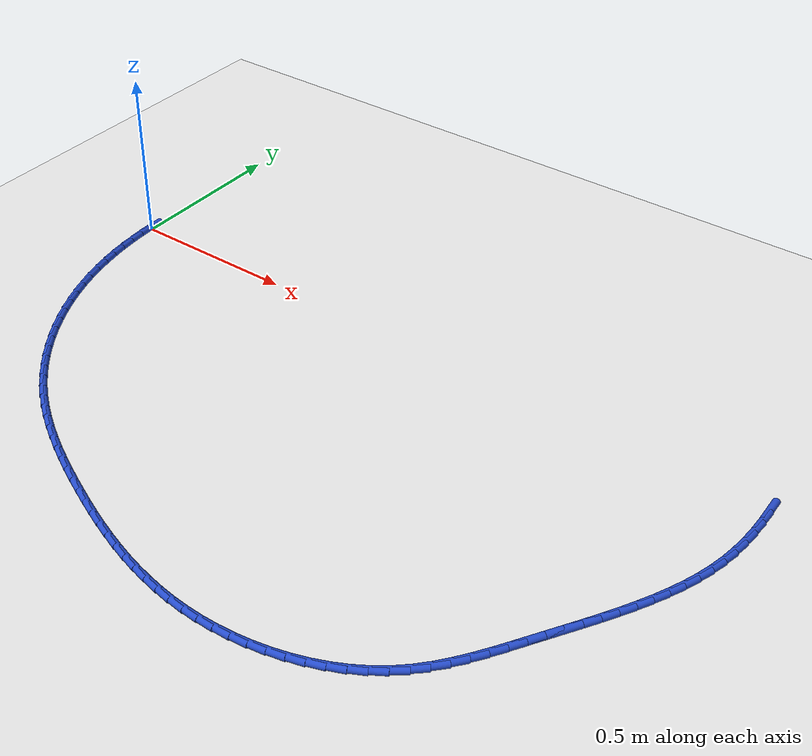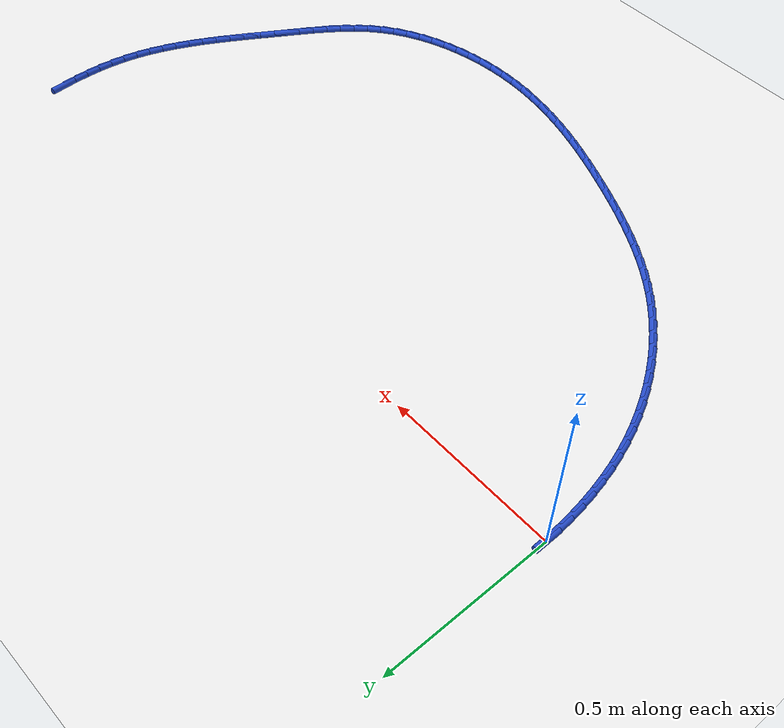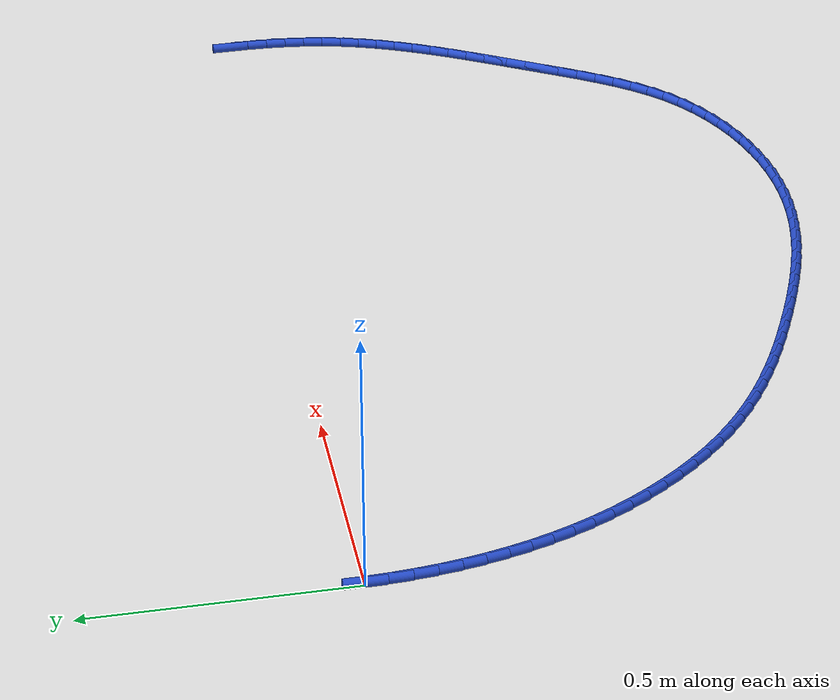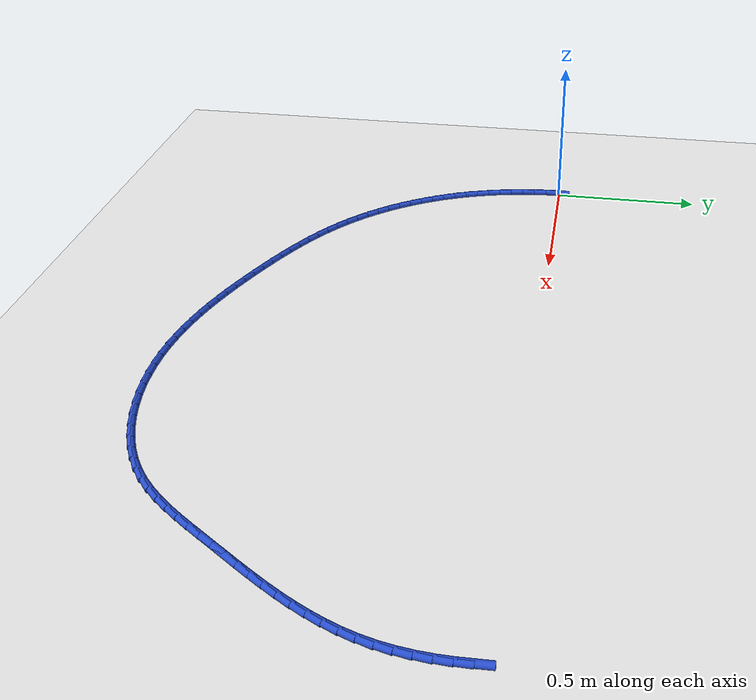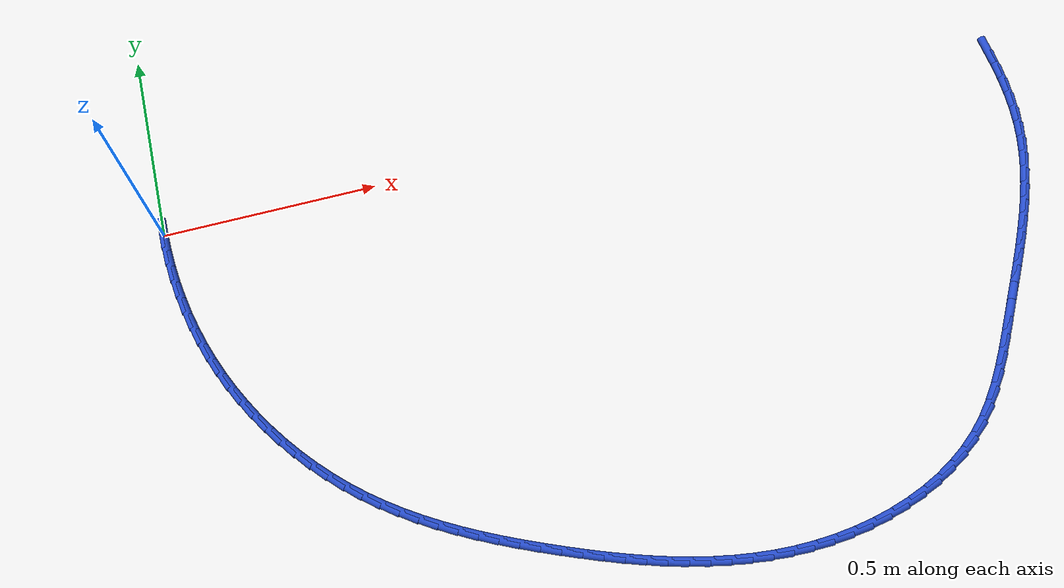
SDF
<sdf version="1.6">
 <world name="default">
  <model name="ground_plane">
   <static>1</static>
   <link name="link">
    <collision name="collision">
     <geometry><plane><normal>0 0 1</normal><size>100 100</size></plane></geometry>
     <surface><friction><ode><mu>100</mu><mu2>50</mu2></ode></friction></surface>
    </collision>
    <visual name="visual">
     <cast_shadows>0</cast_shadows>
     <geometry><plane><normal>0 0 1</normal><size>100 100</size></plane></geometry>
     <material>
      <script><uri>file://media/materials/scripts/gazebo.material</uri><name>Gazebo/WhiteGlow</name></script>
     </material>
    </visual>
   </link>
  </model>
  <model name="line">
   <link name="link_75">
    <pose>2.0578190626390716 -0.03148024494922658 0.01 0 1.57 -1.54157945097995</pose>
    <collision name="collision">
     <geometry><cylinder><radius>0.01</radius><length>0.08</length></cylinder></geometry>
    </collision>
    <visual name="visual">
     <material>
      <script><name>Gazebo/Blue</name><uri>file://media/materials/scripts/gazebo.material</uri></script>
     </material>
     <geometry><cylinder><radius>0.01</radius><length>0.08</length></cylinder></geometry>
    </visual>
   </link>
   <link name="link_76">
    <pose>2.059097541503903 -0.07522602637230458 0.01 0 1.57 1.5566669034358185</pose>
    <collision name="collision">
     <geometry><cylinder><radius>0.01</radius><length>0.08</length></cylinder></geometry>
    </collision>
    <visual name="visual">
     <material>
      <script><name>Gazebo/Blue</name><uri>file://media/materials/scripts/gazebo.material</uri></script>
     </material>
     <geometry><cylinder><radius>0.01</radius><length>0.08</length></cylinder></geometry>
    </visual>
   </link>
   <link name="link_77">
    <pose>2.0584839252457896 -0.11865139538677807 0.01 0 1.57 1.5088403497087017</pose>
    <collision name="collision">
     <geometry><cylinder><radius>0.01</radius><length>0.08</length></cylinder></geometry>
    </collision>
    <visual name="visual">
     <material>
      <script><name>Gazebo/Blue</name><uri>file://media/materials/scripts/gazebo.material</uri></script>
     </material>
     <geometry><cylinder><radius>0.01</radius><length>0.08</length></cylinder></geometry>
    </visual>
   </link>
   <link name="link_78">
    <pose>2.0558144088021697 -0.1616835612885254 0.01 0 1.57 1.456435824767279</pose>
    <collision name="collision">
     <geometry><cylinder><radius>0.01</radius><length>0.08</length></cylinder></geometry>
    </collision>
    <visual name="visual">
     <material>
      <script><name>Gazebo/Blue</name><uri>file://media/materials/scripts/gazebo.material</uri></script>
     </material>
     <geometry><cylinder><radius>0.01</radius><length>0.08</length></cylinder></geometry>
    </visual>
   </link>
   <link name="link_79">
    <pose>2.05092518711048 -0.2042497333734271 0.01 0 1.57 1.399445822095924</pose>
    <collision name="collision">
     <geometry><cylinder><radius>0.01</radius><length>0.08</length></cylinder></geometry>
    </collision>
    <visual name="visual">
     <material>
      <script><name>Gazebo/Blue</name><uri>file://media/materials/scripts/gazebo.material</uri></script>
     </material>
     <geometry><cylinder><radius>0.01</radius><length>0.08</length></cylinder></geometry>
    </visual>
   </link>
   <link name="link_80">
    <pose>2.0436524551081603 -0.2462771209373608 0.01 0 1.57 1.338064077118481</pose>
    <collision name="collision">
     <geometry><cylinder><radius>0.01</radius><length>0.08</length></cylinder></geometry>
    </collision>
    <visual name="visual">
     <material>
      <script><name>Gazebo/Blue</name><uri>file://media/materials/scripts/gazebo.material</uri></script>
     </material>
     <geometry><cylinder><radius>0.01</radius><length>0.08</length></cylinder></geometry>
    </visual>
   </link>
   <link name="link_81">
    <pose>2.033835535792248 -0.28769395856424373 0.01 0 1.57 1.2765928549116508</pose>
    <collision name="collision">
     <geometry><cylinder><radius>0.01</radius><length>0.08</length></cylinder></geometry>
    </collision>
    <visual name="visual">
     <material>
      <script><name>Gazebo/Blue</name><uri>file://media/materials/scripts/gazebo.material</uri></script>
     </material>
     <geometry><cylinder><radius>0.01</radius><length>0.08</length></cylinder></geometry>
    </visual>
   </link>
   <link name="link_82">
    <pose>2.021476919322631 -0.3284819623445664 0.01 0 1.57 1.2213046557243608</pose>
    <collision name="collision">
     <geometry><cylinder><radius>0.01</radius><length>0.08</length></cylinder></geometry>
    </collision>
    <visual name="visual">
     <material>
      <script><name>Gazebo/Blue</name><uri>file://media/materials/scripts/gazebo.material</uri></script>
     </material>
     <geometry><cylinder><radius>0.01</radius><length>0.08</length></cylinder></geometry>
    </visual>
   </link>
   <link name="link_83">
    <pose>2.0068188331395116 -0.36870142735928324 0.01 0 1.57 1.1728511510974842</pose>
    <collision name="collision">
     <geometry><cylinder><radius>0.01</radius><length>0.08</length></cylinder></geometry>
    </collision>
    <visual name="visual">
     <material>
      <script><name>Gazebo/Blue</name><uri>file://media/materials/scripts/gazebo.material</uri></script>
     </material>
     <geometry><cylinder><radius>0.01</radius><length>0.08</length></cylinder></geometry>
    </visual>
   </link>
   <link name="link_84">
    <pose>1.9901226610563545 -0.4084189275979548 0.01 0 1.57 1.1312210568525272</pose>
    <collision name="collision">
     <geometry><cylinder><radius>0.01</radius><length>0.08</length></cylinder></geometry>
    </collision>
    <visual name="visual">
     <material>
      <script><name>Gazebo/Blue</name><uri>file://media/materials/scripts/gazebo.material</uri></script>
     </material>
     <geometry><cylinder><radius>0.01</radius><length>0.08</length></cylinder></geometry>
    </visual>
   </link>
   <link name="link_85">
    <pose>1.971649786886628 -0.44770103705013903 0.01 0 1.57 1.0962807242312929</pose>
    <collision name="collision">
     <geometry><cylinder><radius>0.01</radius><length>0.08</length></cylinder></geometry>
    </collision>
    <visual name="visual">
     <material>
      <script><name>Gazebo/Blue</name><uri>file://media/materials/scripts/gazebo.material</uri></script>
     </material>
     <geometry><cylinder><radius>0.01</radius><length>0.08</length></cylinder></geometry>
    </visual>
   </link>
   <link name="link_86">
    <pose>1.9516615944437974 -0.4866143297053961 0.01 0 1.57 1.0678328339312293</pose>
    <collision name="collision">
     <geometry><cylinder><radius>0.01</radius><length>0.08</length></cylinder></geometry>
    </collision>
    <visual name="visual">
     <material>
      <script><name>Gazebo/Blue</name><uri>file://media/materials/scripts/gazebo.material</uri></script>
     </material>
     <geometry><cylinder><radius>0.01</radius><length>0.08</length></cylinder></geometry>
    </visual>
   </link>
   <link name="link_87">
    <pose>1.9304194675413306 -0.525225379553285 0.01 0 1.57 1.045661972989527</pose>
    <collision name="collision">
     <geometry><cylinder><radius>0.01</radius><length>0.08</length></cylinder></geometry>
    </collision>
    <visual name="visual">
     <material>
      <script><name>Gazebo/Blue</name><uri>file://media/materials/scripts/gazebo.material</uri></script>
     </material>
     <geometry><cylinder><radius>0.01</radius><length>0.08</length></cylinder></geometry>
    </visual>
   </link>
   <link name="link_88">
    <pose>1.908184789992693 -0.5636007605833638 0.01 0 1.57 1.0295675159652453</pose>
    <collision name="collision">
     <geometry><cylinder><radius>0.01</radius><length>0.08</length></cylinder></geometry>
    </collision>
    <visual name="visual">
     <material>
      <script><name>Gazebo/Blue</name><uri>file://media/materials/scripts/gazebo.material</uri></script>
     </material>
     <geometry><cylinder><radius>0.01</radius><length>0.08</length></cylinder></geometry>
    </visual>
   </link>
   <link name="link_89">
    <pose>1.8852189456113504 -0.6018070467851931 0.01 0 1.57 1.0193858644598957</pose>
    <collision name="collision">
     <geometry><cylinder><radius>0.01</radius><length>0.08</length></cylinder></geometry>
    </collision>
    <visual name="visual">
     <material>
      <script><name>Gazebo/Blue</name><uri>file://media/materials/scripts/gazebo.material</uri></script>
     </material>
     <geometry><cylinder><radius>0.01</radius><length>0.08</length></cylinder></geometry>
    </visual>
   </link>
   <link name="link_90">
    <pose>1.8617833182107706 -0.6399108121483315 0.01 0 1.57 1.0150044413735155</pose>
    <collision name="collision">
     <geometry><cylinder><radius>0.01</radius><length>0.08</length></cylinder></geometry>
    </collision>
    <visual name="visual">
     <material>
      <script><name>Gazebo/Blue</name><uri>file://media/materials/scripts/gazebo.material</uri></script>
     </material>
     <geometry><cylinder><radius>0.01</radius><length>0.08</length></cylinder></geometry>
    </visual>
   </link>
   <link name="link_91">
    <pose>1.8381392916044197 -0.6779786306623372 0.01 0 1.57 1.0162468766296546</pose>
    <collision name="collision">
     <geometry><cylinder><radius>0.01</radius><length>0.08</length></cylinder></geometry>
    </collision>
    <visual name="visual">
     <material>
      <script><name>Gazebo/Blue</name><uri>file://media/materials/scripts/gazebo.material</uri></script>
     </material>
     <geometry><cylinder><radius>0.01</radius><length>0.08</length></cylinder></geometry>
    </visual>
   </link>
   <link name="link_92">
    <pose>1.8145437634291357 -0.7160738853554199 0.01 0 1.57 1.0161159859363358</pose>
    <collision name="collision">
     <geometry><cylinder><radius>0.01</radius><length>0.08</length></cylinder></geometry>
    </collision>
    <visual name="visual">
     <material>
      <script><name>Gazebo/Blue</name><uri>file://media/materials/scripts/gazebo.material</uri></script>
     </material>
     <geometry><cylinder><radius>0.01</radius><length>0.08</length></cylinder></geometry>
    </visual>
   </link>
   <link name="link_93">
    <pose>1.7909978061942704 -0.7540779940408301 0.01 0 1.57 1.0038873113246498</pose>
    <collision name="collision">
     <geometry><cylinder><radius>0.01</radius><length>0.08</length></cylinder></geometry>
    </collision>
    <visual name="visual">
     <material>
      <script><name>Gazebo/Blue</name><uri>file://media/materials/scripts/gazebo.material</uri></script>
     </material>
     <geometry><cylinder><radius>0.01</radius><length>0.08</length></cylinder></geometry>
    </visual>
   </link>
   <link name="link_94">
    <pose>1.767113452479846 -0.7915956552937141 0.01 0 1.57 0.9783662302962106</pose>
    <collision name="collision">
     <geometry><cylinder><radius>0.01</radius><length>0.08</length></cylinder></geometry>
    </collision>
    <visual name="visual">
     <material>
      <script><name>Gazebo/Blue</name><uri>file://media/materials/scripts/gazebo.material</uri></script>
     </material>
     <geometry><cylinder><radius>0.01</radius><length>0.08</length></cylinder></geometry>
    </visual>
   </link>
   <link name="link_95">
    <pose>1.7424701293097415 -0.8282083757647535 0.01 0 1.57 0.9390791796296835</pose>
    <collision name="collision">
     <geometry><cylinder><radius>0.01</radius><length>0.08</length></cylinder></geometry>
    </collision>
    <visual name="visual">
     <material>
      <script><name>Gazebo/Blue</name><uri>file://media/materials/scripts/gazebo.material</uri></script>
     </material>
     <geometry><cylinder><radius>0.01</radius><length>0.08</length></cylinder></geometry>
    </visual>
   </link>
   <link name="link_96">
    <pose>1.7166472637078356 -0.8634976621046291 0.01 0 1.57 0.8855108338736527</pose>
    <collision name="collision">
     <geometry><cylinder><radius>0.01</radius><length>0.08</length></cylinder></geometry>
    </collision>
    <visual name="visual">
     <material>
      <script><name>Gazebo/Blue</name><uri>file://media/materials/scripts/gazebo.material</uri></script>
     </material>
     <geometry><cylinder><radius>0.01</radius><length>0.08</length></cylinder></geometry>
    </visual>
   </link>
   <link name="link_97">
    <pose>1.6892242826980066 -0.8970450209640248 0.01 0 1.57 0.817332876439566</pose>
    <collision name="collision">
     <geometry><cylinder><radius>0.01</radius><length>0.08</length></cylinder></geometry>
    </collision>
    <visual name="visual">
     <material>
      <script><name>Gazebo/Blue</name><uri>file://media/materials/scripts/gazebo.material</uri></script>
     </material>
     <geometry><cylinder><radius>0.01</radius><length>0.08</length></cylinder></geometry>
    </visual>
   </link>
   <link name="link_98">
    <pose>1.6597806133041342 -0.9284319589936207 0.01 0 1.57 0.7347650932911559</pose>
    <collision name="collision">
     <geometry><cylinder><radius>0.01</radius><length>0.08</length></cylinder></geometry>
    </collision>
    <visual name="visual">
     <material>
      <script><name>Gazebo/Blue</name><uri>file://media/materials/scripts/gazebo.material</uri></script>
     </material>
     <geometry><cylinder><radius>0.01</radius><length>0.08</length></cylinder></geometry>
    </visual>
   </link>
   <link name="link_99">
    <pose>1.627896434653056 -0.9572404524857953 0.01 0 1.57 0.644051072908042</pose>
    <collision name="collision">
     <geometry><cylinder><radius>0.01</radius><length>0.08</length></cylinder></geometry>
    </collision>
    <visual name="visual">
     <material>
      <script><name>Gazebo/Blue</name><uri>file://media/materials/scripts/gazebo.material</uri></script>
     </material>
     <geometry><cylinder><radius>0.01</radius><length>0.08</length></cylinder></geometry>
    </visual>
   </link>
   <link name="link_100">
    <pose>1.5933527734948845 -0.9831778946282524 0.01 0 1.57 0.5580675763667018</pose>
    <collision name="collision">
     <geometry><cylinder><radius>0.01</radius><length>0.08</length></cylinder></geometry>
    </collision>
    <visual name="visual">
     <material>
      <script><name>Gazebo/Blue</name><uri>file://media/materials/scripts/gazebo.material</uri></script>
     </material>
     <geometry><cylinder><radius>0.01</radius><length>0.08</length></cylinder></geometry>
    </visual>
   </link>
   <link name="link_101">
    <pose>1.5564010474386987 -1.0062454085526298 0.01 0 1.57 0.47829500113681067</pose>
    <collision name="collision">
     <geometry><cylinder><radius>0.01</radius><length>0.08</length></cylinder></geometry>
    </collision>
    <visual name="visual">
     <material>
      <script><name>Gazebo/Blue</name><uri>file://media/materials/scripts/gazebo.material</uri></script>
     </material>
     <geometry><cylinder><radius>0.01</radius><length>0.08</length></cylinder></geometry>
    </visual>
   </link>
   <link name="link_102">
    <pose>1.5173599225716472 -1.0264861098981055 0.01 0 1.57 0.40419207002087715</pose>
    <collision name="collision">
     <geometry><cylinder><radius>0.01</radius><length>0.08</length></cylinder></geometry>
    </collision>
    <visual name="visual">
     <material>
      <script><name>Gazebo/Blue</name><uri>file://media/materials/scripts/gazebo.material</uri></script>
     </material>
     <geometry><cylinder><radius>0.01</radius><length>0.08</length></cylinder></geometry>
    </visual>
   </link>
   <link name="link_103">
    <pose>1.4765480649808806 -1.0439431143038589 0.01 0 1.57 0.33507298801911856</pose>
    <collision name="collision">
     <geometry><cylinder><radius>0.01</radius><length>0.08</length></cylinder></geometry>
    </collision>
    <visual name="visual">
     <material>
      <script><name>Gazebo/Blue</name><uri>file://media/materials/scripts/gazebo.material</uri></script>
     </material>
     <geometry><cylinder><radius>0.01</radius><length>0.08</length></cylinder></geometry>
    </visual>
   </link>
   <link name="link_104">
    <pose>1.434284140753548 -1.0586595374090682 0.01 0 1.57 0.27017966775192875</pose>
    <collision name="collision">
     <geometry><cylinder><radius>0.01</radius><length>0.08</length></cylinder></geometry>
    </collision>
    <visual name="visual">
     <material>
      <script><name>Gazebo/Blue</name><uri>file://media/materials/scripts/gazebo.material</uri></script>
     </material>
     <geometry><cylinder><radius>0.01</radius><length>0.08</length></cylinder></geometry>
    </visual>
   </link>
   <link name="link_105">
    <pose>1.3908868159767975 -1.0706784948529124 0.01 0 1.57 0.20872621939032338</pose>
    <collision name="collision">
     <geometry><cylinder><radius>0.01</radius><length>0.08</length></cylinder></geometry>
    </collision>
    <visual name="visual">
     <material>
      <script><name>Gazebo/Blue</name><uri>file://media/materials/scripts/gazebo.material</uri></script>
     </material>
     <geometry><cylinder><radius>0.01</radius><length>0.08</length></cylinder></geometry>
    </visual>
   </link>
   <link name="link_106">
    <pose>1.34667475673778 -1.08004310227457 0.01 0 1.57 0.1499212842393804</pose>
    <collision name="collision">
     <geometry><cylinder><radius>0.01</radius><length>0.08</length></cylinder></geometry>
    </collision>
    <visual name="visual">
     <material>
      <script><name>Gazebo/Blue</name><uri>file://media/materials/scripts/gazebo.material</uri></script>
     </material>
     <geometry><cylinder><radius>0.01</radius><length>0.08</length></cylinder></geometry>
    </visual>
   </link>
   <link name="link_107">
    <pose>1.3019666291236427 -1.0867964753132195 0.01 0 1.57 0.09297401639156383</pose>
    <collision name="collision">
     <geometry><cylinder><radius>0.01</radius><length>0.08</length></cylinder></geometry>
    </collision>
    <visual name="visual">
     <material>
      <script><name>Gazebo/Blue</name><uri>file://media/materials/scripts/gazebo.material</uri></script>
     </material>
     <geometry><cylinder><radius>0.01</radius><length>0.08</length></cylinder></geometry>
    </visual>
   </link>
   <link name="link_108">
    <pose>1.2570810992215353 -1.09098172960804 0.01 0 1.57 0.037088906096398915</pose>
    <collision name="collision">
     <geometry><cylinder><radius>0.01</radius><length>0.08</length></cylinder></geometry>
    </collision>
    <visual name="visual">
     <material>
      <script><name>Gazebo/Blue</name><uri>file://media/materials/scripts/gazebo.material</uri></script>
     </material>
     <geometry><cylinder><radius>0.01</radius><length>0.08</length></cylinder></geometry>
    </visual>
   </link>
   <link name="link_109">
    <pose>1.2123367487182106 -1.092642009978699 0.01 0 1.57 -0.017922923494440655</pose>
    <collision name="collision">
     <geometry><cylinder><radius>0.01</radius><length>0.08</length></cylinder></geometry>
    </collision>
    <visual name="visual">
     <material>
      <script><name>Gazebo/Blue</name><uri>file://media/materials/scripts/gazebo.material</uri></script>
     </material>
     <geometry><cylinder><radius>0.01</radius><length>0.08</length></cylinder></geometry>
    </visual>
   </link>
   <link name="link_110">
    <pose>1.1679758403445553 -1.0918468476663064 0.01 0 1.57 -0.070551808343066</pose>
    <collision name="collision">
     <geometry><cylinder><radius>0.01</radius><length>0.08</length></cylinder></geometry>
    </collision>
    <visual name="visual">
     <material>
      <script><name>Gazebo/Blue</name><uri>file://media/materials/scripts/gazebo.material</uri></script>
     </material>
     <geometry><cylinder><radius>0.01</radius><length>0.08</length></cylinder></geometry>
    </visual>
   </link>
   <link name="link_111">
    <pose>1.124023671033984 -1.0887407873985406 0.01 0 1.57 -0.1201621959966673</pose>
    <collision name="collision">
     <geometry><cylinder><radius>0.01</radius><length>0.08</length></cylinder></geometry>
    </collision>
    <visual name="visual">
     <material>
      <script><name>Gazebo/Blue</name><uri>file://media/materials/scripts/gazebo.material</uri></script>
     </material>
     <geometry><cylinder><radius>0.01</radius><length>0.08</length></cylinder></geometry>
    </visual>
   </link>
   <link name="link_112">
    <pose>1.0804672413532097 -1.0834816144415556 0.01 0 1.57 -0.16647544065254963</pose>
    <collision name="collision">
     <geometry><cylinder><radius>0.01</radius><length>0.08</length></cylinder></geometry>
    </collision>
    <visual name="visual">
     <material>
      <script><name>Gazebo/Blue</name><uri>file://media/materials/scripts/gazebo.material</uri></script>
     </material>
     <geometry><cylinder><radius>0.01</radius><length>0.08</length></cylinder></geometry>
    </visual>
   </link>
   <link name="link_113">
    <pose>1.0372935518689435 -1.0762271140615036 0.01 0 1.57 -0.20930052694870505</pose>
    <collision name="collision">
     <geometry><cylinder><radius>0.01</radius><length>0.08</length></cylinder></geometry>
    </collision>
    <visual name="visual">
     <material>
      <script><name>Gazebo/Blue</name><uri>file://media/materials/scripts/gazebo.material</uri></script>
     </material>
     <geometry><cylinder><radius>0.01</radius><length>0.08</length></cylinder></geometry>
    </visual>
   </link>
   <link name="link_114">
    <pose>0.9944896031478996 -1.0671350715245398 0.01 0 1.57 -0.24852311045884432</pose>
    <collision name="collision">
     <geometry><cylinder><radius>0.01</radius><length>0.08</length></cylinder></geometry>
    </collision>
    <visual name="visual">
     <material>
      <script><name>Gazebo/Blue</name><uri>file://media/materials/scripts/gazebo.material</uri></script>
     </material>
     <geometry><cylinder><radius>0.01</radius><length>0.08</length></cylinder></geometry>
    </visual>
   </link>
   <link name="link_115">
    <pose>0.952042395756789 -1.0563632720968164 0.01 0 1.57 -0.28409163315928887</pose>
    <collision name="collision">
     <geometry><cylinder><radius>0.01</radius><length>0.08</length></cylinder></geometry>
    </collision>
    <visual name="visual">
     <material>
      <script><name>Gazebo/Blue</name><uri>file://media/materials/scripts/gazebo.material</uri></script>
     </material>
     <geometry><cylinder><radius>0.01</radius><length>0.08</length></cylinder></geometry>
    </visual>
   </link>
   <link name="link_116">
    <pose>0.9099389302623245 -1.0440695010444871 0.01 0 1.57 -0.3160025024052733</pose>
    <collision name="collision">
     <geometry><cylinder><radius>0.01</radius><length>0.08</length></cylinder></geometry>
    </collision>
    <visual name="visual">
     <material>
      <script><name>Gazebo/Blue</name><uri>file://media/materials/scripts/gazebo.material</uri></script>
     </material>
     <geometry><cylinder><radius>0.01</radius><length>0.08</length></cylinder></geometry>
    </visual>
   </link>
   <link name="link_117">
    <pose>0.86816620723122 -1.030411543633706 0.01 0 1.57 -0.34428578448570774</pose>
    <collision name="collision">
     <geometry><cylinder><radius>0.01</radius><length>0.08</length></cylinder></geometry>
    </collision>
    <visual name="visual">
     <material>
      <script><name>Gazebo/Blue</name><uri>file://media/materials/scripts/gazebo.material</uri></script>
     </material>
     <geometry><cylinder><radius>0.01</radius><length>0.08</length></cylinder></geometry>
    </visual>
   </link>
   <link name="link_118">
    <pose>0.8267112272301865 -1.0155471851306257 0.01 0 1.57 -0.3689923047614611</pose>
    <collision name="collision">
     <geometry><cylinder><radius>0.01</radius><length>0.08</length></cylinder></geometry>
    </collision>
    <visual name="visual">
     <material>
      <script><name>Gazebo/Blue</name><uri>file://media/materials/scripts/gazebo.material</uri></script>
     </material>
     <geometry><cylinder><radius>0.01</radius><length>0.08</length></cylinder></geometry>
    </visual>
   </link>
   <link name="link_119">
    <pose>0.7855609908259373 -0.9996342108014004 0.01 0 1.57 -0.3901825748069695</pose>
    <collision name="collision">
     <geometry><cylinder><radius>0.01</radius><length>0.08</length></cylinder></geometry>
    </collision>
    <visual name="visual">
     <material>
      <script><name>Gazebo/Blue</name><uri>file://media/materials/scripts/gazebo.material</uri></script>
     </material>
     <geometry><cylinder><radius>0.01</radius><length>0.08</length></cylinder></geometry>
    </visual>
   </link>
   <link name="link_120">
    <pose>0.7447024985851847 -0.9828304059121832 0.01 0 1.57 -0.4079176256020231</pose>
    <collision name="collision">
     <geometry><cylinder><radius>0.01</radius><length>0.08</length></cylinder></geometry>
    </collision>
    <visual name="visual">
     <material>
      <script><name>Gazebo/Blue</name><uri>file://media/materials/scripts/gazebo.material</uri></script>
     </material>
     <geometry><cylinder><radius>0.01</radius><length>0.08</length></cylinder></geometry>
    </visual>
   </link>
   <link name="link_121">
    <pose>0.7041227510746411 -0.9652935557291273 0.01 0 1.57 -0.4226165662932703</pose>
    <collision name="collision">
     <geometry><cylinder><radius>0.01</radius><length>0.08</length></cylinder></geometry>
    </collision>
    <visual name="visual">
     <material>
      <script><name>Gazebo/Blue</name><uri>file://media/materials/scripts/gazebo.material</uri></script>
     </material>
     <geometry><cylinder><radius>0.01</radius><length>0.08</length></cylinder></geometry>
    </visual>
   </link>
   <link name="link_122">
    <pose>0.6638151345789322 -0.9471666318873448 0.01 0 1.57 -0.4383631995010719</pose>
    <collision name="collision">
     <geometry><cylinder><radius>0.01</radius><length>0.08</length></cylinder></geometry>
    </collision>
    <visual name="visual">
     <material>
      <script><name>Gazebo/Blue</name><uri>file://media/materials/scripts/gazebo.material</uri></script>
     </material>
     <geometry><cylinder><radius>0.01</radius><length>0.08</length></cylinder></geometry>
    </visual>
   </link>
   <link name="link_123">
    <pose>0.6238436837386379 -0.9284287154941752 0.01 0 1.57 -0.4577220491506517</pose>
    <collision name="collision">
     <geometry><cylinder><radius>0.01</radius><length>0.08</length></cylinder></geometry>
    </collision>
    <visual name="visual">
     <material>
      <script><name>Gazebo/Blue</name><uri>file://media/materials/scripts/gazebo.material</uri></script>
     </material>
     <geometry><cylinder><radius>0.01</radius><length>0.08</length></cylinder></geometry>
    </visual>
   </link>
   <link name="link_124">
    <pose>0.5843163660078181 -0.9089569720229691 0.01 0 1.57 -0.4807942878444953</pose>
    <collision name="collision">
     <geometry><cylinder><radius>0.01</radius><length>0.08</length></cylinder></geometry>
    </collision>
    <visual name="visual">
     <material>
      <script><name>Gazebo/Blue</name><uri>file://media/materials/scripts/gazebo.material</uri></script>
     </material>
     <geometry><cylinder><radius>0.01</radius><length>0.08</length></cylinder></geometry>
    </visual>
   </link>
   <link name="link_125">
    <pose>0.545341810501172 -0.8886270320223134 0.01 0 1.57 -0.5076451223629201</pose>
    <collision name="collision">
     <geometry><cylinder><radius>0.01</radius><length>0.08</length></cylinder></geometry>
    </collision>
    <visual name="visual">
     <material>
      <script><name>Gazebo/Blue</name><uri>file://media/materials/scripts/gazebo.material</uri></script>
     </material>
     <geometry><cylinder><radius>0.01</radius><length>0.08</length></cylinder></geometry>
    </visual>
   </link>
   <link name="link_126">
    <pose>0.5070286463333961 -0.8673145260407925 0.01 0 1.57 -0.538332137593296</pose>
    <collision name="collision">
     <geometry><cylinder><radius>0.01</radius><length>0.08</length></cylinder></geometry>
    </collision>
    <visual name="visual">
     <material>
      <script><name>Gazebo/Blue</name><uri>file://media/materials/scripts/gazebo.material</uri></script>
     </material>
     <geometry><cylinder><radius>0.01</radius><length>0.08</length></cylinder></geometry>
    </visual>
   </link>
   <link name="link_127">
    <pose>0.4694855026191893 -0.8448950846269936 0.01 0 1.57 -0.572893611413075</pose>
    <collision name="collision">
     <geometry><cylinder><radius>0.01</radius><length>0.08</length></cylinder></geometry>
    </collision>
    <visual name="visual">
     <material>
      <script><name>Gazebo/Blue</name><uri>file://media/materials/scripts/gazebo.material</uri></script>
     </material>
     <geometry><cylinder><radius>0.01</radius><length>0.08</length></cylinder></geometry>
    </visual>
   </link>
   <link name="link_128">
    <pose>0.4328210084732482 -0.8212443383295011 0.01 0 1.57 -0.6113346286193729</pose>
    <collision name="collision">
     <geometry><cylinder><radius>0.01</radius><length>0.08</length></cylinder></geometry>
    </collision>
    <visual name="visual">
     <material>
      <script><name>Gazebo/Blue</name><uri>file://media/materials/scripts/gazebo.material</uri></script>
     </material>
     <geometry><cylinder><radius>0.01</radius><length>0.08</length></cylinder></geometry>
    </visual>
   </link>
   <link name="link_129">
    <pose>0.39714379301027164 -0.7962379176969014 0.01 0 1.57 -0.6536113710104425</pose>
    <collision name="collision">
     <geometry><cylinder><radius>0.01</radius><length>0.08</length></cylinder></geometry>
    </collision>
    <visual name="visual">
     <material>
      <script><name>Gazebo/Blue</name><uri>file://media/materials/scripts/gazebo.material</uri></script>
     </material>
     <geometry><cylinder><radius>0.01</radius><length>0.08</length></cylinder></geometry>
    </visual>
   </link>
   <link name="link_130">
    <pose>0.3625624853449579 -0.7697514532777808 0.01 0 1.57 -0.6996143786088984</pose>
    <collision name="collision">
     <geometry><cylinder><radius>0.01</radius><length>0.08</length></cylinder></geometry>
    </collision>
    <visual name="visual">
     <material>
      <script><name>Gazebo/Blue</name><uri>file://media/materials/scripts/gazebo.material</uri></script>
     </material>
     <geometry><cylinder><radius>0.01</radius><length>0.08</length></cylinder></geometry>
    </visual>
   </link>
   <link name="link_131">
    <pose>0.32918571351074877 -0.7416605810221201 0.01 0 1.57 -0.7482344126600617</pose>
    <collision name="collision">
     <geometry><cylinder><radius>0.01</radius><length>0.08</length></cylinder></geometry>
    </collision>
    <visual name="visual">
     <material>
      <script><name>Gazebo/Blue</name><uri>file://media/materials/scripts/gazebo.material</uri></script>
     </material>
     <geometry><cylinder><radius>0.01</radius><length>0.08</length></cylinder></geometry>
    </visual>
   </link>
   <link name="link_132">
    <pose>0.2971128430246066 -0.7118872076693779 0.01 0 1.57 -0.7962533143096068</pose>
    <collision name="collision">
     <geometry><cylinder><radius>0.01</radius><length>0.08</length></cylinder></geometry>
    </collision>
    <visual name="visual">
     <material>
      <script><name>Gazebo/Blue</name><uri>file://media/materials/scripts/gazebo.material</uri></script>
     </material>
     <geometry><cylinder><radius>0.01</radius><length>0.08</length></cylinder></geometry>
    </visual>
   </link>
   <link name="link_133">
    <pose>0.26641146776866864 -0.6805119547779408 0.01 0 1.57 -0.8431693493039472</pose>
    <collision name="collision">
     <geometry><cylinder><radius>0.01</radius><length>0.08</length></cylinder></geometry>
    </collision>
    <visual name="visual">
     <material>
      <script><name>Gazebo/Blue</name><uri>file://media/materials/scripts/gazebo.material</uri></script>
     </material>
     <geometry><cylinder><radius>0.01</radius><length>0.08</length></cylinder></geometry>
    </visual>
   </link>
   <link name="link_134">
    <pose>0.23714237485623776 -0.6476494470378977 0.01 0 1.57 -0.8891844172687351</pose>
    <collision name="collision">
     <geometry><cylinder><radius>0.01</radius><length>0.08</length></cylinder></geometry>
    </collision>
    <visual name="visual">
     <material>
      <script><name>Gazebo/Blue</name><uri>file://media/materials/scripts/gazebo.material</uri></script>
     </material>
     <geometry><cylinder><radius>0.01</radius><length>0.08</length></cylinder></geometry>
    </visual>
   </link>
   <link name="link_135">
    <pose>0.20936635140061682 -0.6134143091393379 0.01 0 1.57 -0.9345048883779088</pose>
    <collision name="collision">
     <geometry><cylinder><radius>0.01</radius><length>0.08</length></cylinder></geometry>
    </collision>
    <visual name="visual">
     <material>
      <script><name>Gazebo/Blue</name><uri>file://media/materials/scripts/gazebo.material</uri></script>
     </material>
     <geometry><cylinder><radius>0.01</radius><length>0.08</length></cylinder></geometry>
    </visual>
   </link>
   <link name="link_136">
    <pose>0.18314418451510728 -0.5779211657723483 0.01 0 1.57 -0.979340334732599</pose>
    <collision name="collision">
     <geometry><cylinder><radius>0.01</radius><length>0.08</length></cylinder></geometry>
    </collision>
    <visual name="visual">
     <material>
      <script><name>Gazebo/Blue</name><uri>file://media/materials/scripts/gazebo.material</uri></script>
     </material>
     <geometry><cylinder><radius>0.01</radius><length>0.08</length></cylinder></geometry>
    </visual>
   </link>
   <link name="link_137">
    <pose>0.1585366613130121 -0.5412846416270185 0.01 0 1.57 -1.0239028815549513</pose>
    <collision name="collision">
     <geometry><cylinder><radius>0.01</radius><length>0.08</length></cylinder></geometry>
    </collision>
    <visual name="visual">
     <material>
      <script><name>Gazebo/Blue</name><uri>file://media/materials/scripts/gazebo.material</uri></script>
     </material>
     <geometry><cylinder><radius>0.01</radius><length>0.08</length></cylinder></geometry>
    </visual>
   </link>
   <link name="link_138">
    <pose>0.13560456890763406 -0.5036193613934375 0.01 0 1.57 -1.0684070011668914</pose>
    <collision name="collision">
     <geometry><cylinder><radius>0.01</radius><length>0.08</length></cylinder></geometry>
    </collision>
    <visual name="visual">
     <material>
      <script><name>Gazebo/Blue</name><uri>file://media/materials/scripts/gazebo.material</uri></script>
     </material>
     <geometry><cylinder><radius>0.01</radius><length>0.08</length></cylinder></geometry>
    </visual>
   </link>
   <link name="link_139">
    <pose>0.1144086944122747 -0.46503994976169216 0.01 0 1.57 -1.1130695827773858</pose>
    <collision name="collision">
     <geometry><cylinder><radius>0.01</radius><length>0.08</length></cylinder></geometry>
    </collision>
    <visual name="visual">
     <material>
      <script><name>Gazebo/Blue</name><uri>file://media/materials/scripts/gazebo.material</uri></script>
     </material>
     <geometry><cylinder><radius>0.01</radius><length>0.08</length></cylinder></geometry>
    </visual>
   </link>
   <link name="link_140">
    <pose>0.09500982494023727 -0.425661031421873 0.01 0 1.57 -1.158083761921068</pose>
    <collision name="collision">
     <geometry><cylinder><radius>0.01</radius><length>0.08</length></cylinder></geometry>
    </collision>
    <visual name="visual">
     <material>
      <script><name>Gazebo/Blue</name><uri>file://media/materials/scripts/gazebo.material</uri></script>
     </material>
     <geometry><cylinder><radius>0.01</radius><length>0.08</length></cylinder></geometry>
    </visual>
   </link>
   <link name="link_141">
    <pose>0.07746652408807243 -0.38559502656640005 0.01 0 1.57 -1.2030601856178513</pose>
    <collision name="collision">
     <geometry><cylinder><radius>0.01</radius><length>0.08</length></cylinder></geometry>
    </collision>
    <visual name="visual">
     <material>
      <script><name>Gazebo/Blue</name><uri>file://media/materials/scripts/gazebo.material</uri></script>
     </material>
     <geometry><cylinder><radius>0.01</radius><length>0.08</length></cylinder></geometry>
    </visual>
   </link>
   <link name="link_142">
    <pose>0.061791892735235436 -0.34490928154072953 0.01 0 1.57 -1.2474054133059505</pose>
    <collision name="collision">
     <geometry><cylinder><radius>0.01</radius><length>0.08</length></cylinder></geometry>
    </collision>
    <visual name="visual">
     <material>
      <script><name>Gazebo/Blue</name><uri>file://media/materials/scripts/gazebo.material</uri></script>
     </material>
     <geometry><cylinder><radius>0.01</radius><length>0.08</length></cylinder></geometry>
    </visual>
   </link>
   <link name="link_143">
    <pose>0.047956516283107486 -0.303628990872855 0.01 0 1.57 -1.2909583618536957</pose>
    <collision name="collision">
     <geometry><cylinder><radius>0.01</radius><length>0.08</length></cylinder></geometry>
    </collision>
    <visual name="visual">
     <material>
      <script><name>Gazebo/Blue</name><uri>file://media/materials/scripts/gazebo.material</uri></script>
     </material>
     <geometry><cylinder><radius>0.01</radius><length>0.08</length></cylinder></geometry>
    </visual>
   </link>
   <link name="link_144">
    <pose>0.03592934689433032 -0.26177772982210856 0.01 0 1.57 -1.3335943056002508</pose>
    <collision name="collision">
     <geometry><cylinder><radius>0.01</radius><length>0.08</length></cylinder></geometry>
    </collision>
    <visual name="visual">
     <material>
      <script><name>Gazebo/Blue</name><uri>file://media/materials/scripts/gazebo.material</uri></script>
     </material>
     <geometry><cylinder><radius>0.01</radius><length>0.08</length></cylinder></geometry>
    </visual>
   </link>
   <link name="link_145">
    <pose>0.02567933673154647 -0.21937907364782475 0.01 0 1.57 -1.3752069181205904</pose>
    <collision name="collision">
     <geometry><cylinder><radius>0.01</radius><length>0.08</length></cylinder></geometry>
    </collision>
    <visual name="visual">
     <material>
      <script><name>Gazebo/Blue</name><uri>file://media/materials/scripts/gazebo.material</uri></script>
     </material>
     <geometry><cylinder><radius>0.01</radius><length>0.08</length></cylinder></geometry>
    </visual>
   </link>
   <link name="link_146">
    <pose>0.0171754379573978 -0.1764565976093356 0.01 0 1.57 -1.4157088742816648</pose>
    <collision name="collision">
     <geometry><cylinder><radius>0.01</radius><length>0.08</length></cylinder></geometry>
    </collision>
    <visual name="visual">
     <material>
      <script><name>Gazebo/Blue</name><uri>file://media/materials/scripts/gazebo.material</uri></script>
     </material>
     <geometry><cylinder><radius>0.01</radius><length>0.08</length></cylinder></geometry>
    </visual>
   </link>
   <link name="link_147">
    <pose>0.01038660273452665 -0.13303387696597505 0.01 0 1.57 -1.4550317311983323</pose>
    <collision name="collision">
     <geometry><cylinder><radius>0.01</radius><length>0.08</length></cylinder></geometry>
    </collision>
    <visual name="visual">
     <material>
      <script><name>Gazebo/Blue</name><uri>file://media/materials/scripts/gazebo.material</uri></script>
     </material>
     <geometry><cylinder><radius>0.01</radius><length>0.08</length></cylinder></geometry>
    </visual>
   </link>
   <link name="link_148">
    <pose>0.005281783225575253 -0.08913448697707727 0.01 0 1.57 -1.4931252005227986</pose>
    <collision name="collision">
     <geometry><cylinder><radius>0.01</radius><length>0.08</length></cylinder></geometry>
    </collision>
    <visual name="visual">
     <material>
      <script><name>Gazebo/Blue</name><uri>file://media/materials/scripts/gazebo.material</uri></script>
     </material>
     <geometry><cylinder><radius>0.01</radius><length>0.08</length></cylinder></geometry>
    </visual>
   </link>
   <link name="link_149">
    <pose>0.001829931593185609 -0.04478200290197398 0.01 0 1.57 -1.5299559454333151</pose>
    <collision name="collision">
     <geometry><cylinder><radius>0.01</radius><length>0.08</length></cylinder></geometry>
    </collision>
    <visual name="visual">
     <material>
      <script><name>Gazebo/Blue</name><uri>file://media/materials/scripts/gazebo.material</uri></script>
     </material>
     <geometry><cylinder><radius>0.01</radius><length>0.08</length></cylinder></geometry>
    </visual>
   </link>
   <link name="link_150">
    <pose>5.204170427930421e-18 -1.1102230246251565e-16 0.01 0 1.57 -1.5655060407824206</pose>
    <collision name="collision">
     <geometry><cylinder><radius>0.01</radius><length>0.08</length></cylinder></geometry>
    </collision>
    <visual name="visual">
     <material>
      <script><name>Gazebo/Blue</name><uri>file://media/materials/scripts/gazebo.material</uri></script>
     </material>
     <geometry><cylinder><radius>0.01</radius><length>0.08</length></cylinder></geometry>
    </visual>
   </link>
  </model>
 </world>
</sdf>
